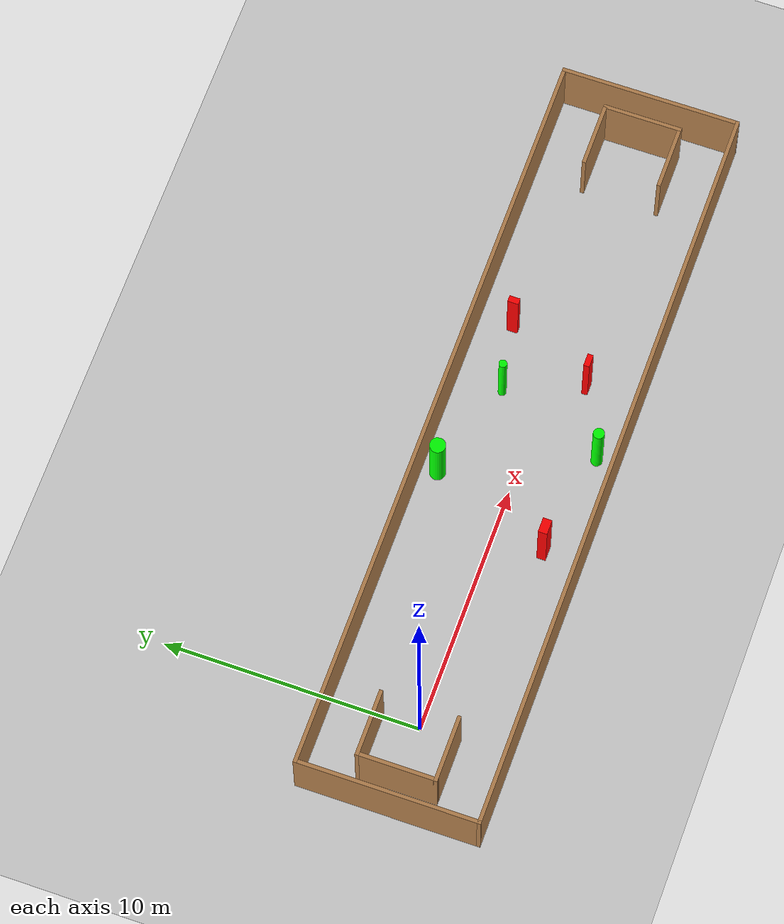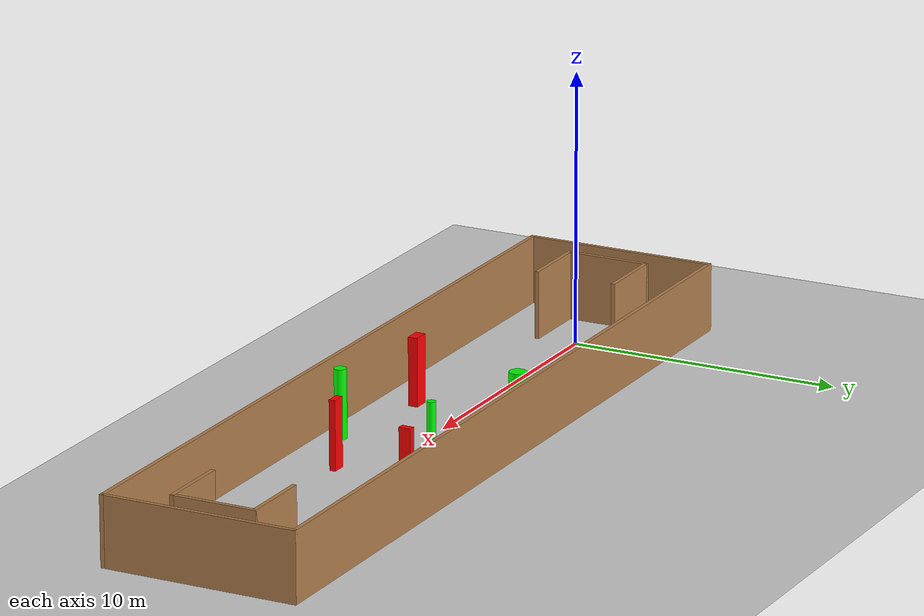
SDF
<sdf version="1.7">
 <world name="default">
  <light name="sun" type="directional">
   <pose>0 0 10 0 -0 0</pose>
   <diffuse>0.8 0.8 0.8 1</diffuse>
   <specular>0.2 0.2 0.2 1</specular>
   <attenuation>
    <range>1000</range>
    <constant>0.9</constant>
    <linear>0.01</linear>
    <quadratic>0.001</quadratic>
   </attenuation>
   <direction>-0.5 0.1 -0.9</direction>
   <spot><inner_angle>0</inner_angle><outer_angle>0</outer_angle><falloff>0</falloff></spot>
  </light>
  <model name="ground_plane">
   <static>1</static>
   <link name="link">
    <collision name="collision">
     <geometry><plane><normal>0 0 1</normal><size>100 100</size></plane></geometry>
     <surface>
      <contact><collide_bitmask>65535</collide_bitmask></contact>
      <friction><ode><mu>100</mu><mu2>50</mu2></ode></friction>
     </surface>
    </collision>
    <visual name="visual">
     <cast_shadows>0</cast_shadows>
     <geometry><plane><normal>0 0 1</normal><size>100 100</size></plane></geometry>
     <material>
      <script><uri>file://media/materials/scripts/gazebo.material</uri><name>Gazebo/Grey</name></script>
     </material>
    </visual>
   </link>
  </model>
  <gravity>0 0 -9.8</gravity>
  <magnetic_field>6e-06 2.3e-05 -4.2e-05</magnetic_field>
  <atmosphere type="adiabatic"/>
  <physics type="ode">
   <max_step_size>0.001</max_step_size>
   <real_time_factor>1</real_time_factor>
   <real_time_update_rate>1000</real_time_update_rate>
  </physics>
  <scene><ambient>0.4 0.4 0.4 1</ambient><background>0.7 0.7 0.7 1</background><shadows>1</shadows></scene>
  <spherical_coordinates>
   <surface_model>EARTH_WGS84</surface_model>
   <latitude_deg>0</latitude_deg>
   <longitude_deg>0</longitude_deg>
   <elevation>0</elevation>
   <heading_deg>0</heading_deg>
  </spherical_coordinates>
  <model name="my_base_walls">
   <link name="Wall_0">
    <collision name="Wall_0_Collision">
     <geometry><box><size>7.15 0.15 2.5</size></box></geometry>
     <pose>0 0 1.25 0 -0 0</pose>
    </collision>
    <visual name="Wall_0_Visual">
     <pose>0 0 1.25 0 -0 0</pose>
     <geometry><box><size>7.15 0.15 2.5</size></box></geometry>
     <material>
      <script><uri>file://media/materials/scripts/gazebo.material</uri><name>Gazebo/Wood</name></script>
      <ambient>1 1 1 1</ambient>
     </material>
     <meta><layer>0</layer></meta>
    </visual>
    <pose>-15 0 0 0 -0 1.5708</pose>
   </link>
   <link name="Wall_10">
    <collision name="Wall_10_Collision">
     <geometry><box><size>2.65 0.15 2.5</size></box></geometry>
     <pose>0 0 1.25 0 -0 0</pose>
    </collision>
    <visual name="Wall_10_Visual">
     <pose>0 0 1.25 0 -0 0</pose>
     <geometry><box><size>2.65 0.15 2.5</size></box></geometry>
     <material>
      <script><uri>file://media/materials/scripts/gazebo.material</uri><name>Gazebo/Wood</name></script>
      <ambient>1 1 1 1</ambient>
     </material>
     <meta><layer>0</layer></meta>
    </visual>
    <pose>-12.75 -1.5 0 0 -0 0</pose>
   </link>
   <link name="Wall_12">
    <collision name="Wall_12_Collision">
     <geometry><box><size>2.65 0.15 2.5</size></box></geometry>
     <pose>0 0 1.25 0 -0 0</pose>
    </collision>
    <visual name="Wall_12_Visual">
     <pose>0 0 1.25 0 -0 0</pose>
     <geometry><box><size>2.65 0.15 2.5</size></box></geometry>
     <material>
      <script><uri>file://media/materials/scripts/gazebo.material</uri><name>Gazebo/Wood</name></script>
      <ambient>1 1 1 1</ambient>
     </material>
     <meta><layer>0</layer></meta>
    </visual>
    <pose>-12.75 1.5 0 0 -0 0</pose>
   </link>
   <link name="Wall_14">
    <collision name="Wall_14_Collision">
     <geometry><box><size>3.15 0.15 2.5</size></box></geometry>
     <pose>0 0 1.25 0 -0 0</pose>
    </collision>
    <visual name="Wall_14_Visual">
     <pose>0 0 1.25 0 -0 0</pose>
     <geometry><box><size>3.15 0.15 2.5</size></box></geometry>
     <material>
      <script><uri>file://media/materials/scripts/gazebo.material</uri><name>Gazebo/Wood</name></script>
      <ambient>1 1 1 1</ambient>
     </material>
     <meta><layer>0</layer></meta>
    </visual>
    <pose>14 0 0 0 -0 -1.5708</pose>
   </link>
   <link name="Wall_15">
    <collision name="Wall_15_Collision">
     <geometry><box><size>2.65 0.15 2.5</size></box></geometry>
     <pose>0 0 1.25 0 -0 0</pose>
    </collision>
    <visual name="Wall_15_Visual">
     <pose>0 0 1.25 0 -0 0</pose>
     <geometry><box><size>2.65 0.15 2.5</size></box></geometry>
     <material>
      <script><uri>file://media/materials/scripts/gazebo.material</uri><name>Gazebo/Wood</name></script>
      <ambient>1 1 1 1</ambient>
     </material>
     <meta><layer>0</layer></meta>
    </visual>
    <pose>12.75 -1.5 0 0 -0 3.14159</pose>
   </link>
   <link name="Wall_17">
    <collision name="Wall_17_Collision">
     <geometry><box><size>2.65 0.15 2.5</size></box></geometry>
     <pose>0 0 1.25 0 -0 0</pose>
    </collision>
    <visual name="Wall_17_Visual">
     <pose>0 0 1.25 0 -0 0</pose>
     <geometry><box><size>2.65 0.15 2.5</size></box></geometry>
     <material>
      <script><uri>file://media/materials/scripts/gazebo.material</uri><name>Gazebo/Wood</name></script>
      <ambient>1 1 1 1</ambient>
     </material>
     <meta><layer>0</layer></meta>
    </visual>
    <pose>12.75 1.5 0 0 -0 3.14159</pose>
   </link>
   <link name="Wall_2">
    <collision name="Wall_2_Collision">
     <geometry><box><size>30.15 0.15 2.5</size></box></geometry>
     <pose>0 0 1.25 0 -0 0</pose>
    </collision>
    <visual name="Wall_2_Visual">
     <pose>0 0 1.25 0 -0 0</pose>
     <geometry><box><size>30.15 0.15 2.5</size></box></geometry>
     <material>
      <script><uri>file://media/materials/scripts/gazebo.material</uri><name>Gazebo/Wood</name></script>
      <ambient>1 1 1 1</ambient>
     </material>
     <meta><layer>0</layer></meta>
    </visual>
    <pose>-0 -3.5 0 0 -0 0</pose>
   </link>
   <link name="Wall_4">
    <collision name="Wall_4_Collision">
     <geometry><box><size>30.15 0.15 2.5</size></box></geometry>
     <pose>0 0 1.25 0 -0 0</pose>
    </collision>
    <visual name="Wall_4_Visual">
     <pose>0 0 1.25 0 -0 0</pose>
     <geometry><box><size>30.15 0.15 2.5</size></box></geometry>
     <material>
      <script><uri>file://media/materials/scripts/gazebo.material</uri><name>Gazebo/Wood</name></script>
      <ambient>1 1 1 1</ambient>
     </material>
     <meta><layer>0</layer></meta>
    </visual>
    <pose>-0 3.5 0 0 -0 0</pose>
   </link>
   <link name="Wall_6">
    <collision name="Wall_6_Collision">
     <geometry><box><size>7.15 0.15 2.5</size></box></geometry>
     <pose>0 0 1.25 0 -0 0</pose>
    </collision>
    <visual name="Wall_6_Visual">
     <pose>0 0 1.25 0 -0 0</pose>
     <geometry><box><size>7.15 0.15 2.5</size></box></geometry>
     <material>
      <script><uri>file://media/materials/scripts/gazebo.material</uri><name>Gazebo/Wood</name></script>
      <ambient>1 1 1 1</ambient>
     </material>
     <meta><layer>0</layer></meta>
    </visual>
    <pose>15 0 0 0 -0 -1.5708</pose>
   </link>
   <link name="Wall_9">
    <collision name="Wall_9_Collision">
     <geometry><box><size>3.15 0.15 2.5</size></box></geometry>
     <pose>0 0 1.25 0 -0 0</pose>
    </collision>
    <visual name="Wall_9_Visual">
     <pose>0 0 1.25 0 -0 0</pose>
     <geometry><box><size>3.15 0.15 2.5</size></box></geometry>
     <material>
      <script><uri>file://media/materials/scripts/gazebo.material</uri><name>Gazebo/Wood</name></script>
      <ambient>1 1 1 1</ambient>
     </material>
     <meta><layer>0</layer></meta>
    </visual>
    <pose>-14 0 0 0 -0 -1.5708</pose>
   </link>
   <static>1</static>
   <pose>11.5 0 0 0 -0 0</pose>
  </model>
  <model name="cylinder1">
   <static>1</static>
   <link name="link">
    <inertial>
     <mass>1</mass>
     <inertia><ixx>0.5</ixx><ixy>0</ixy><ixz>0</ixz><iyy>0.5</iyy><iyz>0</iyz><izz>1</izz></inertia>
    </inertial>
    <collision name="collision">
     <geometry><cylinder><radius>0.15994476603646846</radius><length>2.5</length></cylinder></geometry>
    </collision>
    <visual name="visual">
     <geometry><cylinder><radius>0.15994476603646846</radius><length>2.5</length></cylinder></geometry>
     <material>
      <ambient>0 1 0 1</ambient>
      <diffuse>0 1 0 1</diffuse>
      <specular>0.1 0.1 0.1 1</specular>
      <emissive>0 0 0 0</emissive>
     </material>
    </visual>
   </link>
   <pose>13.869369210424532 1.6256011042522802 1.25 0 0 0</pose>
  </model>
  <model name="cylinder2">
   <static>1</static>
   <link name="link">
    <inertial>
     <mass>1</mass>
     <inertia><ixx>0.5</ixx><ixy>0</ixy><ixz>0</ixz><iyy>0.5</iyy><iyz>0</iyz><izz>1</izz></inertia>
    </inertial>
    <collision name="collision">
     <geometry><cylinder><radius>0.3105361911903455</radius><length>2.5</length></cylinder></geometry>
    </collision>
    <visual name="visual">
     <geometry><cylinder><radius>0.3105361911903455</radius><length>2.5</length></cylinder></geometry>
     <material>
      <ambient>0 1 0 1</ambient>
      <diffuse>0 1 0 1</diffuse>
      <specular>0.1 0.1 0.1 1</specular>
      <emissive>0 0 0 0</emissive>
     </material>
    </visual>
   </link>
   <pose>9.901028759847605 2.812370710778773 1.25 0 0 0</pose>
  </model>
  <model name="cylinder3">
   <static>1</static>
   <link name="link">
    <inertial>
     <mass>1</mass>
     <inertia><ixx>0.5</ixx><ixy>0</ixy><ixz>0</ixz><iyy>0.5</iyy><iyz>0</iyz><izz>1</izz></inertia>
    </inertial>
    <collision name="collision">
     <geometry><cylinder><radius>0.22002544155229764</radius><length>2.5</length></cylinder></geometry>
    </collision>
    <visual name="visual">
     <geometry><cylinder><radius>0.22002544155229764</radius><length>2.5</length></cylinder></geometry>
     <material>
      <ambient>0 1 0 1</ambient>
      <diffuse>0 1 0 1</diffuse>
      <specular>0.1 0.1 0.1 1</specular>
      <emissive>0 0 0 0</emissive>
     </material>
    </visual>
   </link>
   <pose>12.3430706785697 -2.6621622024977794 1.25 0 0 0</pose>
  </model>
  <model name="box1">
   <static>1</static>
   <link name="link">
    <inertial>
     <mass>1</mass>
     <inertia><ixx>0.083</ixx><ixy>0</ixy><ixz>0</ixz><iyy>0.083</iyy><iyz>0</iyz><izz>0.083</izz></inertia>
    </inertial>
    <collision name="collision">
     <geometry><box><size>0.25037231997168113 0.43244891988244644 2.5</size></box></geometry>
    </collision>
    <visual name="visual">
     <geometry><box><size>0.25037231997168113 0.43244891988244644 2.5</size></box></geometry>
     <material>
      <ambient>1 0 0 1</ambient>
      <diffuse>1 0 0 1</diffuse>
      <specular>0.1 0.1 0.1 1</specular>
      <emissive>0 0 0 0</emissive>
     </material>
    </visual>
    <sensor name="my_contact" type="contact">
     <contact><collision>box_collision</collision><topic>__default_topic__</topic></contact>
    </sensor>
   </link>
   <pose>16.51023322880628 2.1024472536672087 1.25 0 0 0</pose>
  </model>
  <model name="box2">
   <static>1</static>
   <link name="link">
    <inertial>
     <mass>1</mass>
     <inertia><ixx>0.083</ixx><ixy>0</ixy><ixz>0</ixz><iyy>0.083</iyy><iyz>0</iyz><izz>0.083</izz></inertia>
    </inertial>
    <collision name="collision">
     <geometry><box><size>0.5891597190392999 0.35148946790271346 2.5</size></box></geometry>
    </collision>
    <visual name="visual">
     <geometry><box><size>0.5891597190392999 0.35148946790271346 2.5</size></box></geometry>
     <material>
      <ambient>1 0 0 1</ambient>
      <diffuse>1 0 0 1</diffuse>
      <specular>0.1 0.1 0.1 1</specular>
      <emissive>0 0 0 0</emissive>
     </material>
    </visual>
    <sensor name="my_contact" type="contact">
     <contact><collision>box_collision</collision><topic>__default_topic__</topic></contact>
    </sensor>
   </link>
   <pose>8.14730505598396 -1.9916373730714587 1.25 0 0 0</pose>
  </model>
  <model name="box3">
   <static>1</static>
   <link name="link">
    <inertial>
     <mass>1</mass>
     <inertia><ixx>0.083</ixx><ixy>0</ixy><ixz>0</ixz><iyy>0.083</iyy><iyz>0</iyz><izz>0.083</izz></inertia>
    </inertial>
    <collision name="collision">
     <geometry><box><size>0.508510654343896 0.2284974590230819 2.5</size></box></geometry>
    </collision>
    <visual name="visual">
     <geometry><box><size>0.508510654343896 0.2284974590230819 2.5</size></box></geometry>
     <material>
      <ambient>1 0 0 1</ambient>
      <diffuse>1 0 0 1</diffuse>
      <specular>0.1 0.1 0.1 1</specular>
      <emissive>0 0 0 0</emissive>
     </material>
    </visual>
    <sensor name="my_contact" type="contact">
     <contact><collision>box_collision</collision><topic>__default_topic__</topic></contact>
    </sensor>
   </link>
   <pose>15.06386217327537 -1.3419194446567548 1.25 0 0 0</pose>
  </model>
 </world>
</sdf>
